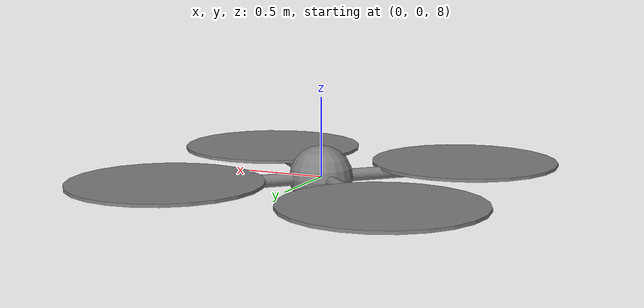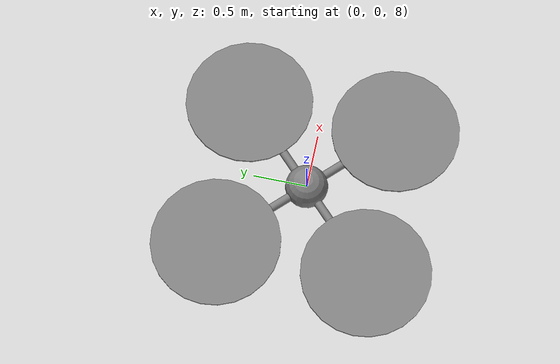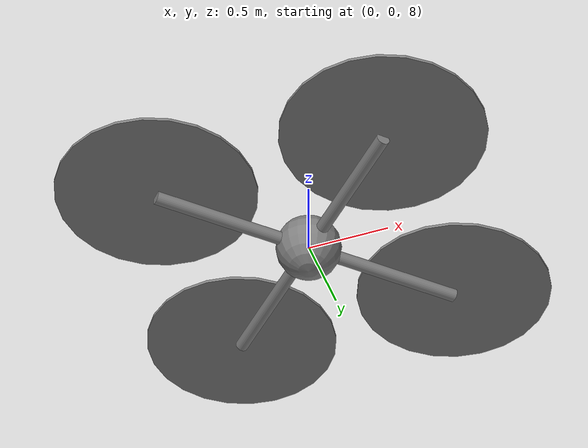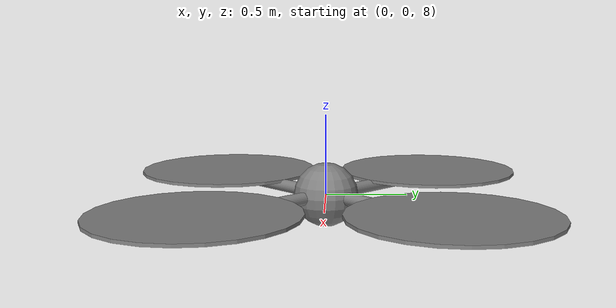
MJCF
<mujoco model="Drone">
  <compiler angle="radian" meshdir=""/>

  <asset>
    <texture type="skybox" builtin="gradient" rgb1=".3 .5 .7" rgb2="0 0 0" width="512" height="512"/>
    <texture name="grid" type="2d" builtin="checker" width="512" height="512" rgb1=".1 .2 .3" rgb2=".2 .3 .4"/>
    <material name="grid" texture="grid" texrepeat="1 1" texuniform="true" reflectance=".2"/>
  </asset>

  <worldbody>
    <camera pos="2.867 -5.173 1.776" xyaxes="0.875 0.485 0.000 -0.139 0.252 0.958"/>
    <geom size="20 20 .05" type="plane" material="grid" condim="3"/>
    <light dir=".2 1 -.4" diffuse=".9 .9 .9" specular="0.6 0.9 0.6" pos="-2 -10 6" cutoff="70"/>
    <light dir="-.2 1 -.4" diffuse=".9 .9 .9" specular="0.6 0.9 0.6" pos="2 -10 6" cutoff="70"/>

    <body name="drone" pos="0 0 8">
        <joint type="free"/>
        <geom type="sphere" size="0.2" mass="1"/>
        <site name="COG" pos="0 0 0"/>
        <body name="arm1" pos="0 0 0">
            <geom type="cylinder" fromto="0.7 0.7 0 -0.7 -0.7 0" size="0.04" mass="0.1" />
        </body>
        <body name="arm2" pos="0 0 0">
            <geom type="cylinder" fromto="-0.7 0.7 0 0.7 -0.7 0" size="0.04" mass="0.1" />
        </body>
        <body name="rotor1" pos="0 0 0">
            <geom type="cylinder" fromto="0.7 0.7 0.04 0.7 0.7 0.02" size="0.6" mass="0.01" />
        </body>
        <body name="rotor2" pos="0 0 0">
            <geom type="cylinder" fromto="-0.7 0.7 0.04 -0.7 0.7 0.02" size="0.6" mass="0.01" />
        </body>
        <body name="rotor3" pos="0 0 0">
            <geom type="cylinder" fromto="-0.7 -0.7 0.04 -0.7 -0.7 0.02" size="0.6" mass="0.01" />
         </body>
        <body name="rotor4" pos="0 0 0">
            <geom type="cylinder" fromto="0.7 -0.7 0.04 0.7 -0.7 0.02" size="0.6" mass="0.01" />
        </body>
    </body>

  </worldbody>

  <actuator>
      <general site="COG" gear=" 0 0 1 0 0 0" ctrllimited="true" ctrlrange="0 20"/>
      <general site="COG" gear=" 0 0 0 1 0 0" ctrllimited="true" ctrlrange="-1 1"/>
      <general site="COG" gear=" 0 0 0 0 1 0" ctrllimited="true" ctrlrange="-1 1"/>
      <general site="COG" gear=" 0 0 0 0 0 1" ctrllimited="true" ctrlrange="-1 1"/>
  </actuator>
</mujoco>
